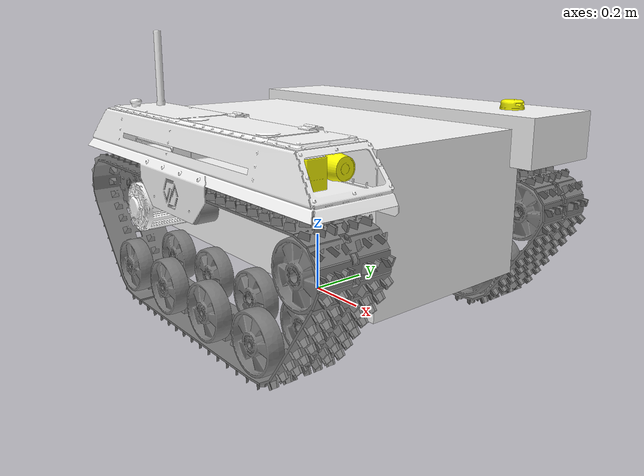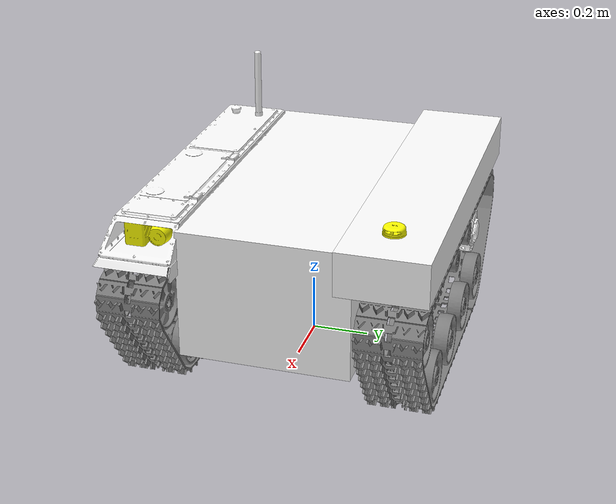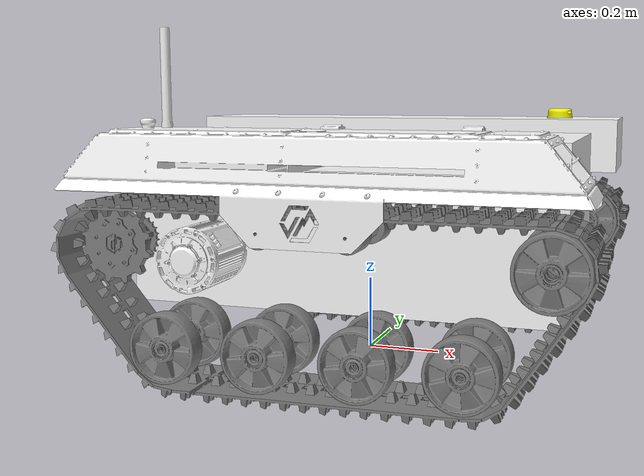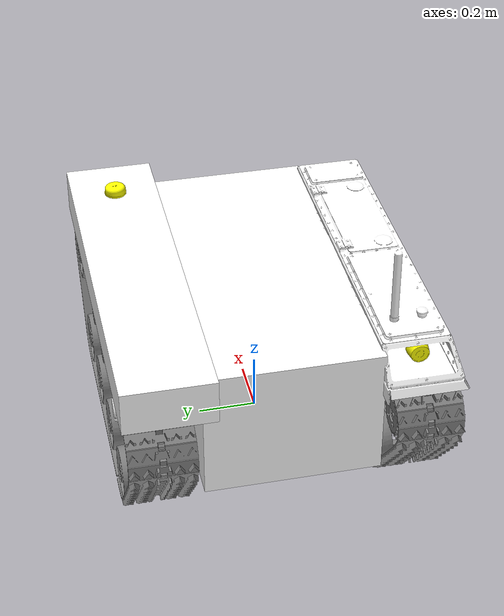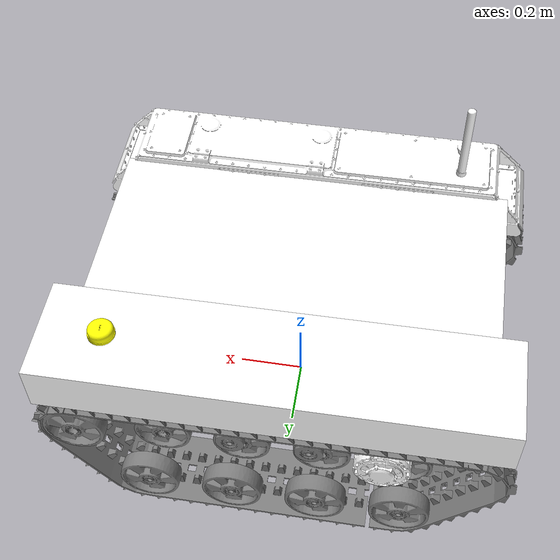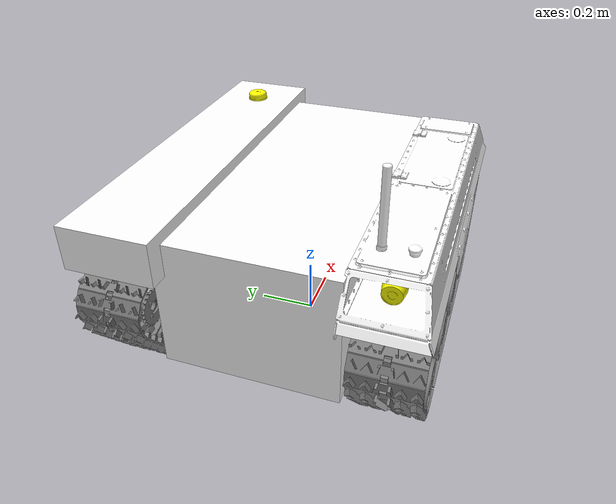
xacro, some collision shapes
<?xml version="1.0"?>
<robot name="object314"
  xmlns:xacro="http://ros.org/wiki/xacro">

  <!-- Hardware control -->
  <xacro:arg name="use_ros2_control" default="false"/>
  <xacro:arg name="control_config" default="$(find object314_description)/config/control.yaml"/>

  <!-- Matherials -->
  <xacro:include filename="$(find object314_description)/urdf/object314_materials.xacro"/>

  <!-- Gazebo -->
  <xacro:include filename="$(find object314_description)/urdf/object314_gazebo.xacro"/>
  <xacro:arg name="use_gps" default="false"/>
  <xacro:arg name="use_imu" default="true"/>
  <xacro:arg name="use_camera" default="false"/>
  <xacro:arg name="use_2dlidar" default="false"/>
  <xacro:arg name="use_3dlidar" default="false"/>
  <xacro:gazebo_plugin_p3d link="base_footprint"/>

  <!-- Base footprint size and position, m -->
  <xacro:property name="bf_length" value="1.323"/>
  <xacro:property name="bf_width" value="1.106"/>
  <xacro:property name="clearance" value="0.387"/>

  <!-- Base size, m -->
  <xacro:property name="b_length" value="1.172"/>
  <xacro:property name="b_width" value="0.584"/>
  <xacro:property name="b_height" value="0.45"/>

  <!-- Track rack position, m -->
  <xacro:property name="tr_length" value="1.306"/>
  <xacro:property name="tr_width" value="0.302"/>
  <xacro:property name="tr_height" value="0.151"/>
  <xacro:property name="tr_x_offset" value="0.0053534"/>
  <xacro:property name="tr_y_offset" value="0.40193"/>
  <xacro:property name="tr_z_offset" value="0.18836"/>

  <!-- Front camera support position, m -->
  <xacro:property name="front_cs_x_offset" value="0.42865"/>
  <xacro:property name="front_cs_y_offset" value="0.038083"/>
  <xacro:property name="front_cs_z_offset" value="-0.00585"/>

  <!-- Rear camera support position, m -->
  <xacro:property name="rear_cs_x_offset" value="-0.42865"/>
  <xacro:property name="rear_cs_y_offset" value="0.011067"/>
  <xacro:property name="rear_cs_z_offset" value="-0.00585"/>

  <!-- LiDAR support position, m -->
  <xacro:property name="ls_x_offset" value="0.4405"/>
  <xacro:property name="ls_y_offset" value="0.044567"/>
  <xacro:property name="ls_z_offset" value="0.029437"/>

  <!-- Motor position, m  -->
  <xacro:property name="m_width" value="0.231"/>
  <xacro:property name="m_radius" value="0.081"/>
  <xacro:property name="m_x_offset" value="-0.30119"/>
  <xacro:property name="m_y_offset" value="0.423"/>
  <xacro:property name="m_z_offset" value="-0.06264"/>

  <!-- Front camera support macro -->
  <xacro:macro name="front_camera_support" params="prefix y_reflect">
    <link name="${prefix}_front_camera_support_link">
      <visual>
        <origin xyz="0 0 0" rpy="0 0 0"/>
        <geometry>
          <mesh filename="file://$(find object314_description)/meshes/${prefix}_front_camera_support_link.STL"/>
        </geometry>
        <material name="white"/>
      </visual>
      <inertial>
        <origin xyz="-0.0031533 5.4989E-08 -0.00054325" rpy="0 0 0"/>
        <mass value="0.057329"/>
        <inertia ixx="6.2514E-06" ixy="9.5761E-12" ixz="5.248E-07" iyy="1.1233E-05" iyz="-6.0811E-11" izz="1.1493E-05"/>
      </inertial>
    </link>

    <joint name="${prefix}_front_camera_support_to_track_rack" type="fixed">
      <origin xyz="${front_cs_x_offset} ${y_reflect*front_cs_y_offset} ${front_cs_z_offset}" rpy="0 0 0"/>
      <parent link="${prefix}_track_rack_link"/>
      <child link="${prefix}_front_camera_support_link"/>
    </joint>

    <xacro:gazebo_white link="${prefix}_front_camera_support_link"/>
  </xacro:macro>

  <!-- Rear camera support macro -->
  <xacro:macro name="rear_camera_support" params="prefix y_reflect">
    <link name="${prefix}_rear_camera_support_link">
      <visual>
        <origin xyz="0 0 0" rpy="0 0 0"/>
        <geometry>
          <mesh filename="file://$(find object314_description)/meshes/${prefix}_rear_camera_support_link.STL"/>
        </geometry>
        <material name="white"/>
      </visual>
      <inertial>
        <origin xyz="0.0031533 -5.4989E-08 -0.00054325" rpy="0 0 0"/>
        <mass value="0.057329"/>
        <inertia ixx="6.2514E-06" ixy="9.5761E-12" ixz="-5.248E-07" iyy="1.1233E-05" iyz="6.0811E-11" izz="1.1493E-05"/>
      </inertial>
    </link>

    <joint name="${prefix}_rear_camera_support_to_track_rack" type="fixed">
      <origin xyz="${rear_cs_x_offset} ${y_reflect*rear_cs_y_offset} ${rear_cs_z_offset}" rpy="0 0 0"/>
      <parent link="${prefix}_track_rack_link"/>
      <child link="${prefix}_rear_camera_support_link"/>
    </joint>

    <xacro:gazebo_white link="${prefix}_rear_camera_support_link"/>
  </xacro:macro>

  <!-- LiDAR support macro -->
  <xacro:macro name="lidar_support" params="prefix y_reflect">
    <link name="${prefix}_lidar_support_link">
      <visual>
        <origin xyz="0 0 0" rpy="0 0 0"/>
        <geometry>
          <mesh filename="file://$(find object314_description)/meshes/${prefix}_lidar_support_link.STL"/>
        </geometry>
        <material name="white"/>
      </visual>
      <inertial>
        <origin xyz="0.041711 6.4115E-15 -0.0005" rpy="0 0 0"/>
        <mass value="0.057599"/>
        <inertia ixx="1.9762E-05" ixy="1.1954E-20" ixz="-3.3985E-23" iyy="6.6711E-05" iyz="-6.7553E-25" izz="8.6464E-05"/>
      </inertial>
    </link>

    <joint name="${prefix}_lidar_support_to_track_rack" type="fixed">
      <origin xyz="${ls_x_offset} ${y_reflect*ls_y_offset} ${ls_z_offset}" rpy="0 0 0"/>
      <parent link="${prefix}_track_rack_link"/>
      <child link="${prefix}_lidar_support_link"/>
    </joint>

    <xacro:gazebo_white link="${prefix}_lidar_support_link"/>
  </xacro:macro>

  <!-- Motor macro -->
  <xacro:macro name="motor" params="prefix y_reflect">
    <link name="${prefix}_motor_link">
      <visual>
        <origin xyz="0 0 0" rpy="0 0 0"/>
        <geometry>
          <mesh filename="file://$(find object314_description)/meshes/${prefix}_motor_link.STL"/>
        </geometry>
        <material name="white"/>
      </visual>
      <inertial>
        <origin xyz="-0.0044864 0.014926 3.7495E-05" rpy="0 0 0"/>
        <mass value="12.791"/>
        <inertia ixx="0.042845" ixy="-0.00011771" ixz="1.5164E-05" iyy="0.037463" iyz="-7.1534E-05" izz="0.042799"/>
      </inertial>
      <collision>
      <origin xyz="0 0 0" rpy="${pi/2} 0 0"/>
      <geometry>
        <cylinder radius="${m_radius}" length="${m_width}"/>
      </geometry>
    </collision>
    </link>

    <joint name="${prefix}_motor_to_base" type="fixed">
      <origin xyz="${m_x_offset} ${y_reflect*m_y_offset} ${m_z_offset}" rpy="0 0 0"/>
      <parent link="base_link"/>
      <child link="${prefix}_motor_link"/>
    </joint>

    <xacro:gazebo_white link="${prefix}_motor_link"/>
  </xacro:macro>

  <!-- Base -->
  <link name="base_footprint"/>

  <link name="base_link">
    <visual>
      <origin xyz="0 0 0" rpy="0 0 0"/>
      <geometry>
        <mesh filename="file://$(find object314_description)/meshes/base_link.STL"/>
      </geometry>
      <material name="white"/>
    </visual>
    <inertial>
      <origin xyz="0.038003 -0.00046893 -0.092409" rpy="0 0 0"/>
      <mass value="127.93"/>
      <inertia ixx="1.3597" ixy="-4.8039E-06" ixz="0.016572" iyy="4.5352" iyz="0.00010341" izz="5.3896"/>
    </inertial>
    <collision>
      <origin xyz="0 0 0" rpy="0 0 0"/>
      <geometry>
        <box size="${b_length} ${b_width} ${b_height}"/>
      </geometry>
    </collision>
  </link>

  <joint name="base_to_base_footprint" type="fixed">
    <origin xyz="0 0 ${clearance}" rpy="0 0 0"/>
    <parent link="base_footprint"/>
    <child link="base_link"/>
  </joint>

  <xacro:gazebo_white link="base_link"/>

  <!-- Left Track Rack -->
  <link name="left_track_rack_link">
    <visual>
      <origin xyz="0 0 0" rpy="0 0 0"/>
      <geometry>
        <mesh filename="file://$(find object314_description)/meshes/left_track_rack_link.STL"/>
      </geometry>
      <material name="white"/>
    </visual>
    <inertial>
      <origin xyz="-0.027594 -0.0037388 -0.010878" rpy="0 0 0"/>
      <mass value="15.216"/>
      <inertia ixx="0.057046" ixy="0.0004233" ixz="8.3437E-05" iyy="0.95392" iyz="-0.00072257" izz="0.9881"/>
    </inertial>
    <collision>
      <origin xyz="0 0 0" rpy="0 0 0"/>
      <geometry>
        <box size="${tr_length} ${tr_width} ${tr_height}"/>
      </geometry>
    </collision>
  </link>

  <joint name="left_track_rack_to_base" type="fixed">
    <origin xyz="${tr_x_offset} ${tr_y_offset} ${tr_z_offset}" rpy="0 0 0"/>
    <parent link="base_link"/>
    <child link="left_track_rack_link"/>
  </joint>

  <xacro:gazebo_white link="left_track_rack_link"/>

  <xacro:front_camera_support prefix="left" y_reflect="-1"/>
  <xacro:rear_camera_support prefix="left" y_reflect="1"/>
  <xacro:lidar_support prefix="left" y_reflect="1"/>
  <xacro:motor prefix="left" y_reflect="1"/>

  <link name="onboard_pc_link">
    <visual>
      <origin xyz="0 0 0" rpy="0 0 0"/>
      <geometry>
        <mesh filename="file://$(find object314_description)/meshes/onboard_pc_link.STL"/>
      </geometry>
      <material name="white"/>
    </visual>
    <inertial>
      <origin xyz="-2.7756E-17 -1.3878E-17 -1.1102E-16" rpy="0 0 0"/>
      <mass value="0.17474"/>
      <inertia ixx="0.00042337" ixy="-2.9E-20" ixz="6.035E-22" iyy="0.0023182" iyz="1.1026E-23" izz="0.0027415"/>
    </inertial>
  </link>

  <joint name="onboard_pc_to_track_rack" type="fixed">
    <origin xyz="0.175 -0.005933 -0.017" rpy="0 0 0"/>
    <parent link="left_track_rack_link"/>
    <child link="onboard_pc_link"/>
  </joint>

  <xacro:gazebo_white link="onboard_pc_link"/>

  <!-- Right Track Rack -->
  <link name="right_track_rack_link">
    <visual>
      <origin xyz="0 0 0" rpy="0 0 0"/>
      <geometry>
        <mesh filename="file://$(find object314_description)/meshes/right_track_rack_link.STL"/>
      </geometry>
      <material name="white"/>
    </visual>
    <inertial>
      <origin xyz="-0.028909 0.003344 -0.011366" rpy="0 0 0"/>
      <mass value="15.03"/>
      <inertia ixx="0.057008" ixy="-0.00043065" ixz="7.8506E-05" iyy="0.95257" iyz="0.00072133" izz="0.98681"/>
    </inertial>
    <collision>
      <origin xyz="0 0 0" rpy="0 0 0"/>
      <geometry>
        <box size="${tr_length} ${tr_width} ${tr_height}"/>
      </geometry>
    </collision>
  </link>

  <joint name="right_track_rack_to_base" type="fixed">
    <origin xyz="${tr_x_offset} ${-tr_y_offset} ${tr_z_offset}" rpy="0 0 0"/>
    <parent link="base_link"/>
    <child link="right_track_rack_link"/>
  </joint>

  <xacro:gazebo_white link="right_track_rack_link"/>

  <xacro:front_camera_support prefix="right" y_reflect="1"/>
  <xacro:rear_camera_support prefix="right" y_reflect="-1"/>
  <xacro:lidar_support prefix="right" y_reflect="-1"/>
  <xacro:motor prefix="right" y_reflect="-1"/>

  <!-- Chassis -->
  <xacro:include filename="$(find object314_description)/urdf/object314_chassis.xacro" />

  <!-- Sensors -->
  <xacro:include filename="$(find object314_description)/urdf/object314_sensors.xacro" />
</robot>

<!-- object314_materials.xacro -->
<robot name="object314"
  xmlns:xacro="http://ros.org/wiki/xacro">

  <material name="blue">
    <color rgba="0.0 0.0 1.0 1.0"/>
  </material>

  <material name="cyan">
    <color rgba="0 1.0 1.0 1.0"/>
  </material>

  <material name="gray">
    <color rgba="0.5 0.5 0.5 1.0"/>
  </material>

  <material name="green">
    <color rgba="0.0 1.0 0.0 1.0"/>
  </material>

  <material name="red">
    <color rgba="1.0 0.0 0.0 1.0"/>
  </material>

  <material name="white">
    <color rgba="1.0 1.0 1.0 1.0"/>
  </material>

  <material name="yellow">
    <color rgba="1.0 1.0 0.0 1.0"/>
  </material>
</robot>

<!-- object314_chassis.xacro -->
<robot name="object314"
  xmlns:xacro="http://ros.org/wiki/xacro">

  <!-- Wheel size and position, m -->
  <xacro:property name="w_width" value="0.210"/>
  <xacro:property name="w_radius" value="0.09"/>
  <xacro:property name="first_w_x_offset" value="0.37971"/>
  <xacro:property name="second_w_x_offset" value="0.12971"/>
  <xacro:property name="third_w_x_offset" value="-0.12029"/>
  <xacro:property name="fourth_w_x_offset" value="-0.37029"/>
  <xacro:property name="w_y_offset" value="0.43"/>
  <xacro:property name="w_z_offset" value="-0.28608"/>

  <!-- Support roller size and position, m -->
  <xacro:property name="sr_width" value="0.222"/>
  <xacro:property name="sr_radius" value="0.04"/>
  <xacro:property name="front_sr_x_offset" value="0.11785"/>
  <xacro:property name="rear_sr_x_offset" value="-0.10215"/>
  <xacro:property name="sr_y_offset" value="0.43"/>
  <xacro:property name="sr_z_offset" value="0.017357"/>

  <!-- Tensioning roller size and position, m  -->
  <xacro:property name="tnr_width" value="0.210"/>
  <xacro:property name="tnr_radius" value="0.09"/>
  <xacro:property name="tnr_x_offset" value="0.57395"/>
  <xacro:property name="tnr_y_offset" value="0.43"/>
  <xacro:property name="tnr_z_offset" value="-0.041643"/>

  <!-- Drive wheel size and position, m -->
  <xacro:property name="dw_width" value="0.116"/>
  <xacro:property name="dw_radius" value="0.105"/>
  <xacro:property name="dw_x_offset" value="-0.55215"/>
  <xacro:property name="dw_y_offset" value="0.4295"/>
  <xacro:property name="dw_z_offset" value="-0.044643"/>

  <!-- Track position, m -->
  <xacro:property name="t_x_offset" value="0.57395"/>
  <xacro:property name="t_y_offset" value="0.43"/>
  <xacro:property name="t_z_offset" value="-0.041643"/>

  <!-- Wheel macro -->
  <xacro:macro name="wheel" params="prefix order x_offset y_reflect">
    <link name="${prefix}_${order}_wheel_link">
      <visual>
        <origin xyz="0 0 0" rpy="0 0 0"/>
        <geometry>
          <mesh filename="file://$(find object314_description)/meshes/${prefix}_${order}_wheel_link.STL"/>
        </geometry>
        <material name="gray"/>
      </visual>
      <inertial>
        <origin xyz="6.9226E-10 -1.7099E-12 1.2784E-11" rpy="0 0 0"/>
        <mass value="1.0698"/>
        <inertia ixx="0.0027827" ixy="2.1063E-12" ixz="1.0476E-11" iyy="0.0051995" iyz="-1.0425E-10" izz="0.0027827"/>
      </inertial>
      <collision>
        <origin xyz="0 0 0" rpy="${pi/2} 0 0"/>
        <geometry>
          <cylinder radius="${w_radius}" length="${w_width/2}"/>
        </geometry>
      </collision>
    </link>

    <joint name="${prefix}_${order}_wheel_to_base" type="continuous">
      <origin xyz="${x_offset} ${y_reflect*w_y_offset} ${w_z_offset}" rpy="0 0 0"/>
      <parent link="base_link"/>
      <child link="${prefix}_${order}_wheel_link"/>
      <axis xyz="0 1 0"/>
      <limit effort="100.0" lower="0.0" upper="0.0" velocity="10.0"/>
    </joint>

    <xacro:gazebo_gray link="${prefix}_${order}_wheel_link"/>
    <xacro:gazebo_physics link="${prefix}_${order}_wheel_link"/>
  </xacro:macro>

  <!-- Support roller macro -->
  <xacro:macro name="support_roller" params="prefix order x_offset y_reflect">
    <link name="${prefix}_${order}_support_roller_link">
      <visual>
        <origin xyz="0 0 0" rpy="0 0 0"/>
        <geometry>
          <mesh filename="file://$(find object314_description)/meshes/${prefix}_${order}_support_roller_link.STL"/>
        </geometry>
        <material name="gray"/>
      </visual>
      <inertial>
        <origin xyz="-2.2551E-16 0.00071168 -3.6082E-16" rpy="0 0 0"/>
        <mass value="0.50128"/>
        <inertia ixx="0.00037779" ixy="8.4627E-21" ixz="1.4358E-20" iyy="0.00049267" iyz="-1.5148E-20" izz="0.00037779"/>
      </inertial>
      <collision>
        <origin xyz="0 0 0" rpy="${pi/2} 0 0"/>
        <geometry>
          <cylinder radius="${sr_radius}" length="${sr_width}"/>
        </geometry>
      </collision>
    </link>

    <joint name="${prefix}_${order}_support_roller_to_base" type="fixed">
      <origin xyz="${x_offset} ${y_reflect*sr_y_offset} ${sr_z_offset}" rpy="0 0 0"/>
      <parent link="base_link"/>
      <child link="${prefix}_${order}_support_roller_link"/>
      <axis xyz="0 1 0"/>
    </joint>

    <xacro:gazebo_gray link="${prefix}_${order}_support_roller_link"/>
  </xacro:macro>

  <!-- Tensioning roller macro -->
  <xacro:macro name="tensioning_roller" params="prefix y_reflect">
    <link name="${prefix}_tensioning_roller_link">
      <visual>
        <origin xyz="0 0 0" rpy="0 0 0"/>
        <geometry>
          <mesh filename="file://$(find object314_description)/meshes/${prefix}_tensioning_roller_link.STL"/>
        </geometry>
        <material name="gray"/>
      </visual>
      <inertial>
        <origin xyz="-3.2326E-11 0.00050736 1.1668E-10" rpy="0 0 0"/>
        <mass value="1.1277"/>
        <inertia ixx="0.0027982" ixy="1.8551E-11" ixz="1.3649E-10" iyy="0.0052307" iyz="5.0955E-12" izz="0.0027982"/>
      </inertial>
      <collision>
        <origin xyz="0 0 0" rpy="${pi/2} 0 0"/>
        <geometry>
          <cylinder radius="${tnr_radius}" length="${tnr_width}"/>
        </geometry>
      </collision>
    </link>

    <joint name="${prefix}_tensioning_roller_to_base" type="fixed">
      <origin xyz="${tnr_x_offset} ${y_reflect*tnr_y_offset} ${tnr_z_offset}" rpy="0 0 0"/>
      <parent link="base_link"/>
      <child link="${prefix}_tensioning_roller_link"/>
      <axis xyz="0 1 0"/>
    </joint>

    <xacro:gazebo_gray link="${prefix}_tensioning_roller_link"/>
  </xacro:macro>

  <!-- Drive wheel macro -->
  <xacro:macro name="drive_wheel" params="prefix y_reflect">
    <link name="${prefix}_drive_wheel_link">
      <visual>
        <origin xyz="0 0 0" rpy="0 0 0"/>
        <geometry>
          <mesh filename="file://$(find object314_description)/meshes/${prefix}_drive_wheel_link.STL"/>
        </geometry>
        <material name="gray"/>
      </visual>
      <inertial>
        <origin xyz="5.4926E-07 -0.025589 -3.1843E-06" rpy="0 0 0"/>
        <mass value="1.9959"/>
        <inertia ixx="0.0028031" ixy="-2.3161E-13" ixz="5.9328E-08" iyy="0.0049683" iyz="3.7319E-14" izz="0.0028033"/>
      </inertial>
      <collision>
        <origin xyz="0 ${y_reflect*0.04375} 0" rpy="${pi/2} 0 0"/>
        <geometry>
          <cylinder radius="${dw_radius}" length="${dw_width}"/>
        </geometry>
      </collision>
    </link>

    <joint name="${prefix}_drive_wheel_to_base" type="fixed">
      <origin xyz="${dw_x_offset} ${y_reflect*dw_y_offset} ${dw_z_offset}" rpy="0 0 0"/>
      <parent link="base_link"/>
      <child link="${prefix}_drive_wheel_link"/>
      <axis xyz="0 1 0"/>
    </joint>

    <xacro:gazebo_gray link="${prefix}_drive_wheel_link"/>
  </xacro:macro>

  <!-- Track macro -->
  <xacro:macro name="track" params="prefix y_reflect">
    <link name="${prefix}_track_link">
      <visual>
        <origin xyz="0 0 0" rpy="0 0 0"/>
        <geometry>
          <mesh filename="file://$(find object314_description)/meshes/${prefix}_track_link.STL"/>
        </geometry>
        <material name="gray"/>
      </visual>
      <inertial>
        <origin xyz="-0.56301 -2.3731E-14 -0.095127" rpy="0 0 0"/>
        <mass value="6.7677"/>
        <inertia ixx="0.02665" ixy="-6.1575E-14" ixz="1.1967E-05" iyy="0.0014381" iyz="3.258E-15" izz="0.0269"/>
      </inertial>
    </link>

    <joint name="${prefix}_track_to_base" type="fixed">
      <origin xyz="${t_x_offset} ${y_reflect*t_y_offset} ${t_z_offset}" rpy="0 0 0"/>
      <parent link="base_link"/>
      <child link="${prefix}_track_link"/>
    </joint>

    <xacro:gazebo_gray link="${prefix}_track_link"/>
  </xacro:macro>

  <xacro:wheel prefix="left" order="first" x_offset="${first_w_x_offset}" y_reflect="1"/>
  <xacro:wheel prefix="left" order="second" x_offset="${second_w_x_offset}" y_reflect="1"/>
  <xacro:wheel prefix="left" order="third" x_offset="${third_w_x_offset}" y_reflect="1"/>
  <xacro:wheel prefix="left" order="fourth" x_offset="${fourth_w_x_offset}" y_reflect="1"/>
  <xacro:support_roller prefix="left" order="front" x_offset="${front_sr_x_offset}" y_reflect="1"/>
  <xacro:support_roller prefix="left" order="rear" x_offset="${rear_sr_x_offset}" y_reflect="1"/>
  <xacro:tensioning_roller prefix="left" y_reflect="1"/>
  <xacro:drive_wheel prefix="left" y_reflect="1"/>
  <xacro:track prefix="left" y_reflect="1"/>

  <xacro:wheel prefix="right" order="first" x_offset="${first_w_x_offset}" y_reflect="-1"/>
  <xacro:wheel prefix="right" order="second" x_offset="${second_w_x_offset}" y_reflect="-1"/>
  <xacro:wheel prefix="right" order="third" x_offset="${third_w_x_offset}" y_reflect="-1"/>
  <xacro:wheel prefix="right" order="fourth" x_offset="${fourth_w_x_offset}" y_reflect="-1"/>
  <xacro:support_roller prefix="right" order="front" x_offset="${front_sr_x_offset}" y_reflect="-1"/>
  <xacro:support_roller prefix="right" order="rear" x_offset="${rear_sr_x_offset}" y_reflect="-1"/>
  <xacro:tensioning_roller prefix="right" y_reflect="-1"/>
  <xacro:drive_wheel prefix="right" y_reflect="-1"/>
  <xacro:track prefix="right" y_reflect="-1"/>

  <xacro:if value="$(arg use_ros2_control)">
    <xacro:hardware_drive min_vel="-10" max_vel="10"/>
  </xacro:if>
  <xacro:unless value="$(arg use_ros2_control)">
    <xacro:gazebo_diff_drive prefix="first" left_joint="left_first_wheel_to_base" right_joint="right_first_wheel_to_base" separation="${2*w_y_offset}" diameter="${2*w_radius}"/>
    <xacro:gazebo_diff_drive prefix="second" left_joint="left_second_wheel_to_base" right_joint="right_second_wheel_to_base" separation="${2*w_y_offset}" diameter="${2*w_radius}"/>
    <xacro:gazebo_diff_drive prefix="third" left_joint="left_third_wheel_to_base" right_joint="right_third_wheel_to_base" separation="${2*w_y_offset}" diameter="${2*w_radius}"/>
    <xacro:gazebo_diff_drive prefix="fourth" left_joint="left_fourth_wheel_to_base" right_joint="right_fourth_wheel_to_base" separation="${2*w_y_offset}" diameter="${2*w_radius}"/>
  </xacro:unless>
</robot>

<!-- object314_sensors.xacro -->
<robot name="object314"
  xmlns:xacro="http://ros.org/wiki/xacro">

  <!-- Front camera position, m -->
  <xacro:property name="fc_x_offset" value="0.12052"/>
  <xacro:property name="fc_roll" value="0.0"/>
  <xacro:property name="fc_pitch" value="0.0"/>
  <xacro:property name="fc_yaw" value="0.0"/>

  <!-- Rear camera position, m -->
  <xacro:property name="rc_x_offset" value="-0.12052"/>
  <xacro:property name="rc_roll" value="0.0"/>
  <xacro:property name="rc_pitch" value="0.0"/>
  <xacro:property name="rc_yaw" value="${pi}"/>

  <!-- LiDAR position, m -->
  <xacro:property name="l_x_offset" value="0.1035"/>
  <xacro:property name="l_z_offset" value="-0.031"/>

  <!-- Front camera macro -->
  <xacro:macro name="front_camera" params="prefix">
    <link name="${prefix}_front_camera_link">
      <visual>
        <origin xyz="0 0 0" rpy="0 0 0"/>
        <geometry>
          <mesh filename="file://$(find object314_description)/meshes/${prefix}_front_camera_link.STL"/>
        </geometry>
        <material name="yellow"/>
      </visual>
      <inertial>
        <origin xyz="-0.037631 -8.4655E-16 -4.0523E-15" rpy="0 0 0"/>
        <mass value="0.24512"/>
        <inertia ixx="0.00012816" ixy="1.7203E-20" ixz="-1.5133E-20" iyy="0.00018671" iyz="3.8465E-21" izz="0.00018671"/>
      </inertial>
    </link>

    <joint name="${prefix}_front_camera_to_camera_support" type="fixed">
      <origin xyz="${fc_x_offset} 0 0" rpy="${fc_roll} ${fc_pitch} ${fc_yaw}"/>
      <parent link="${prefix}_front_camera_support_link"/>
      <child link="${prefix}_front_camera_link"/>
    </joint>

    <link name="${prefix}_front_camera_link_optical"></link>

    <joint name="${prefix}_front_camera_optical_to_camera" type="fixed">
      <origin xyz="0 0 0" rpy="${-pi/2} 0 ${-pi/2}" />
      <parent link="${prefix}_front_camera_link" />
      <child link="${prefix}_front_camera_link_optical" />
    </joint>

    <xacro:gazebo_yellow link="${prefix}_front_camera_link"/>
    <xacro:if value="$(arg use_camera)">
      <xacro:gazebo_camera prefix="${prefix}_front"/>
    </xacro:if>
  </xacro:macro>

  <!-- Rear camera macro -->
  <xacro:macro name="rear_camera" params="prefix">
    <link name="${prefix}_rear_camera_link">
      <visual>
        <origin xyz="0 0 0" rpy="0 0 0"/>
        <geometry>
          <mesh filename="file://$(find object314_description)/meshes/${prefix}_rear_camera_link.STL"/>
        </geometry>
        <material name="yellow"/>
      </visual>
      <inertial>
        <origin xyz="-0.037631 -5.0862E-14 -1.1102E-15" rpy="0 0 0"/>
        <mass value="0.24512"/>
        <inertia ixx="0.00012816" ixy="1.1704E-20" ixz="2.0061E-19" iyy="0.00018671" iyz="-7.4243E-21" izz="0.00018671"/>
      </inertial>
    </link>

    <joint name="${prefix}_rear_camera_to_camera_support" type="fixed">
      <origin xyz="${rc_x_offset} 0 0" rpy="${rc_roll} ${rc_pitch} ${rc_yaw}"/>
      <parent link="${prefix}_rear_camera_support_link"/>
      <child link="${prefix}_rear_camera_link"/>
    </joint>

    <link name="${prefix}_rear_camera_link_optical"></link>

    <joint name="${prefix}_rear_camera_optical_to_camera" type="fixed">
      <origin xyz="0 0 0" rpy="${-pi/2} 0 ${-pi/2}" />
      <parent link="${prefix}_rear_camera_link" />
      <child link="${prefix}_rear_camera_link_optical" />
    </joint>

    <xacro:gazebo_yellow link="${prefix}_rear_camera_link"/>
    <xacro:if value="$(arg use_camera)">
      <xacro:gazebo_camera prefix="${prefix}_rear"/>
    </xacro:if>
  </xacro:macro>

  <!-- LiDAR macro -->
  <xacro:macro name="lidar" params="prefix">
    <link name="${prefix}_lidar_link">
      <visual>
        <origin xyz="0 0 0" rpy="0 0 0"/>
        <geometry>
          <mesh filename="file://$(find object314_description)/meshes/${prefix}_lidar_link.STL"/>
        </geometry>
        <material name="yellow"/>
      </visual>
      <inertial>
        <origin xyz="-0.043203 5.5511E-17 -0.008358" rpy="0 0 0"/>
        <mass value="0.7849"/>
        <inertia ixx="0.00068815" ixy="6.3075E-19" ixz="2.5125E-05" iyy="0.00089838" iyz="-1.3044E-19" izz="0.00081463"/>
      </inertial>
    </link>

    <joint name="${prefix}_lidar_to_lidar_support" type="fixed">
      <origin xyz="${l_x_offset} 0 ${l_z_offset}" rpy="0 0 0"/>
      <parent link="${prefix}_lidar_support_link"/>
      <child link="${prefix}_lidar_link"/>
    </joint>

    <xacro:gazebo_yellow link="${prefix}_lidar_link"/>
    <xacro:if value="$(arg use_3dlidar)">
      <xacro:gazebo_3dlidar prefix="${prefix}"/>
    </xacro:if>
  </xacro:macro>

  <!-- Left Track Rack -->
  <xacro:front_camera prefix="left"/>
  <xacro:rear_camera prefix="left"/>
  <xacro:lidar prefix="left"/>

  <link name="rplidar_link">
    <visual>
      <origin xyz="0 0 0" rpy="0 0 0"/>
      <geometry>
        <mesh filename="file://$(find object314_description)/meshes/rplidar_link.STL"/>
      </geometry>
      <material name="yellow"/>
    </visual>
    <inertial>
      <origin xyz="-0.00056545 -1.4938E-05 -0.011701" rpy="0 0 0"/>
      <mass value="0.19846"/>
      <inertia ixx="9.4638E-05" ixy="5.8166E-08" ixz="2.6218E-06" iyy="9.0228E-05" iyz="3.4632E-08" izz="0.00013194"/>
    </inertial>
  </link>

  <joint name="rplidar_to_track_rack" type="fixed">
    <origin xyz="0.47475 -0.002683 0.094" rpy="0 0 0"/>
    <parent link="left_track_rack_link"/>
    <child link="rplidar_link"/>
  </joint>

  <xacro:gazebo_yellow link="rplidar_link"/>
  <xacro:if value="$(arg use_2dlidar)">
    <xacro:gazebo_2dlidar link="rplidar_link"/>
  </xacro:if>

  <link name="imu_link">
    <visual>
      <origin xyz="0 0 0" rpy="0 0 0"/>
      <geometry>
        <mesh filename="file://$(find object314_description)/meshes/imu_link.STL"/>
      </geometry>
      <material name="yellow"/>
    </visual>
    <inertial>
      <origin xyz="-0.0010278 -8.8161E-05 0.0015926" rpy="0 0 0"/>
      <mass value="0.004905"/>
      <inertia ixx="2.2166E-07" ixy="3.5705E-13" ixz="2.9272E-13" iyy="8.3158E-08" iyz="3.3218E-13" izz="2.9324E-07"/>
    </inertial>
  </link>

  <joint name="imu_to_onboard_pc" type="fixed">
    <origin xyz="0.0265 0.0725 0.00812" rpy="0 0 0"/>
    <parent link="onboard_pc_link"/>
    <child link="imu_link"/>
  </joint>

  <xacro:gazebo_yellow link="imu_link"/>
  <xacro:if value="$(arg use_imu)">
    <xacro:gazebo_imu link="imu_link"/>
  </xacro:if>

  <link name="gps_link">
    <visual>
      <origin xyz="0 0 0" rpy="0 0 0"/>
      <geometry>
        <mesh filename="file://$(find object314_description)/meshes/gps_link.STL"/>
      </geometry>
      <material name="yellow"/>
    </visual>
    <inertial>
      <origin xyz="-0.00037635 -0.002816 -0.0018491" rpy="0 0 0"/>
      <mass value="0.010118"/>
      <inertia ixx="7.6201E-07" ixy="2.3013E-09" ixz="-1.6001E-12" iyy="4.6198E-07" iyz="2.5654E-13" izz="1.2179E-06"/>
    </inertial>
  </link>

  <joint name="gps_to_onboard_pc" type="fixed">
    <origin xyz="0.11618 0.069121 0.0087587" rpy="0 0 0"/>
    <parent link="onboard_pc_link"/>
    <child link="gps_link"/>
  </joint>

  <xacro:gazebo_yellow link="gps_link"/>
  <xacro:if value="$(arg use_gps)">
    <xacro:gazebo_gps link="gps_link"/>
  </xacro:if>

  <!-- Right Track Rack -->
  <xacro:front_camera prefix="right"/>
  <xacro:rear_camera prefix="right"/>
  <xacro:lidar prefix="right"/>
</robot>
